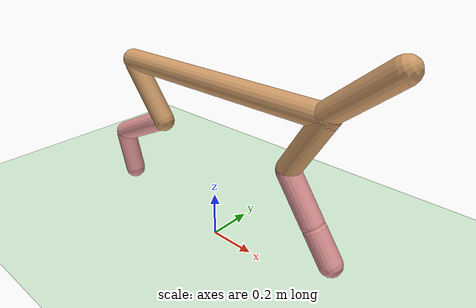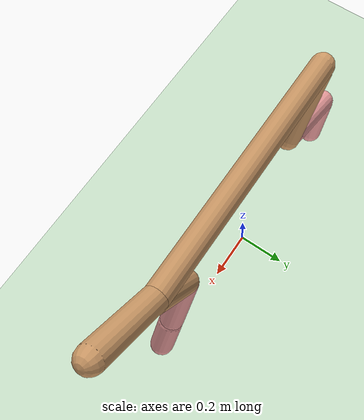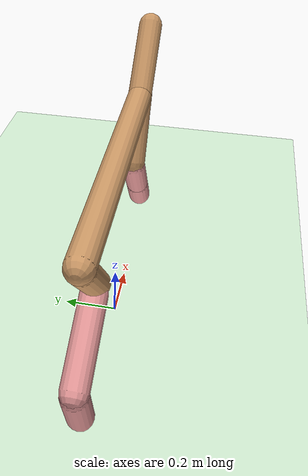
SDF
<?xml version="1.0"?>
<sdf version="1.8">
  <world name="half_cheetah">

    <physics name="fast" type="ignored">
      <!-- 10 ms step, unlimited real-time -->
      <max_step_size>0.01</max_step_size>
      <real_time_update_rate>0</real_time_update_rate>
    </physics>

    <plugin filename="gz-sim-physics-system"           name="gz::sim::systems::Physics"/>
    <plugin filename="gz-sim-contact-system"           name="gz::sim::systems::Contact"/>
    <plugin filename="gz-sim-scene-broadcaster-system" name="gz::sim::systems::SceneBroadcaster"/>
    <plugin filename="gz-sim-user-commands-system"     name="gz::sim::systems::UserCommands"/>

    <light name="sun" type="directional">
      <cast_shadows>true</cast_shadows>
      <pose>0 0 10 0 0 0</pose>
      <diffuse>0.8 0.8 0.8 1</diffuse>
      <specular>0.2 0.2 0.2 1</specular>
      <attenuation><range>1000</range><constant>0.9</constant><linear>0.01</linear><quadratic>0.001</quadratic></attenuation>
      <direction>-0.5 0.1 -0.9</direction>
    </light>

    <model name="ground_plane">
      <static>true</static>
      <link name="link">
        <collision name="collision">
          <geometry><plane><normal>0 0 1</normal><size>100 100</size></plane></geometry>
          <surface><friction><ode><mu>0.4</mu><mu2>0.1</mu2></ode></friction></surface>
        </collision>
        <visual name="visual">
          <geometry><plane><normal>0 0 1</normal><size>100 100</size></plane></geometry>
          <material><ambient>0.8 0.9 0.8 1</ambient><diffuse>0.8 0.9 0.8 1</diffuse></material>
        </visual>
      </link>
    </model>

    <model name="half_cheetah">
      <pose>0 0 0.7 0 0 0</pose>

      <link name="torso">
        <inertial>
          <pose>0.15 0 0.03 0 0 0</pose>
          <mass>6.25</mass>
          <inertia>
            <!-- Horizontal torso: Ixx(along X)=m*r²/2, Iyy=Izz=m*(3r²+L²)/12 -->
            <ixx>0.0066</ixx><ixy>0</ixy><ixz>0</ixz>
            <iyy>0.524</iyy><iyz>0</iyz>
            <izz>0.524</izz>
          </inertia>
        </inertial>
        <!-- Torso body: horizontal capsule along X -->
        <collision name="torso_collision">
          <pose>0 0 0 0 1.5708 0</pose>
          <geometry><capsule><radius>0.046</radius><length>1.0</length></capsule></geometry>
          <surface><friction><ode><mu>0.4</mu></ode></friction></surface>
        </collision>
        <visual name="torso_visual">
          <pose>0 0 0 0 1.5708 0</pose>
          <geometry><capsule><radius>0.046</radius><length>1.0</length></capsule></geometry>
          <material><diffuse>0.8 0.6 0.4 1</diffuse><ambient>0.8 0.6 0.4 1</ambient></material>
        </visual>
        <!-- Head (angled capsule at the front) -->
        <collision name="head_collision">
          <pose>0.6 0 0.1 0 0.87 0</pose>
          <geometry><capsule><radius>0.046</radius><length>0.3</length></capsule></geometry>
        </collision>
        <visual name="head_visual">
          <pose>0.6 0 0.1 0 0.87 0</pose>
          <geometry><capsule><radius>0.046</radius><length>0.3</length></capsule></geometry>
          <material><diffuse>0.8 0.6 0.4 1</diffuse><ambient>0.8 0.6 0.4 1</ambient></material>
        </visual>
      </link>

      <!-- Back leg chain: bthigh → bshin → bfoot -->

      <joint name="bthigh" type="revolute">
        <pose relative_to="torso">-0.5 0 0 0 0 0</pose>
        <parent>torso</parent>
        <child>bthigh_link</child>
        <axis>
          <xyz>0 1 0</xyz>
          <limit><lower>-0.52</lower><upper>1.05</upper><effort>120</effort><velocity>100</velocity></limit>
          <dynamics><damping>6.0</damping><stiffness>240.0</stiffness></dynamics>
        </axis>
      </joint>

      <link name="bthigh_link">
        <pose relative_to="bthigh">0 0 0 0 0 0</pose>
        <inertial>
          <pose>0.1 0 -0.13 0 0 0</pose>
          <mass>1.55</mass>
          <inertia>
            <ixx>0.01169</ixx><ixy>0</ixy><ixz>0</ixz>
            <iyy>0.01169</iyy><iyz>0</iyz>
            <izz>0.00164</izz>
          </inertia>
        </inertial>
        <collision name="bthigh_collision">
          <pose>0.1 0 -0.13 0 -3.8 0</pose>
          <geometry><capsule><radius>0.046</radius><length>0.29</length></capsule></geometry>
          <surface><friction><ode><mu>0.4</mu></ode></friction></surface>
        </collision>
        <visual name="bthigh_visual">
          <pose>0.1 0 -0.13 0 -3.8 0</pose>
          <geometry><capsule><radius>0.046</radius><length>0.29</length></capsule></geometry>
          <material><diffuse>0.8 0.6 0.4 1</diffuse><ambient>0.8 0.6 0.4 1</ambient></material>
        </visual>
      </link>

      <joint name="bshin" type="revolute">
        <pose relative_to="bthigh_link">0.16 0 -0.25 0 0 0</pose>
        <parent>bthigh_link</parent>
        <child>bshin_link</child>
        <axis>
          <xyz>0 1 0</xyz>
          <limit><lower>-0.785</lower><upper>0.785</upper><effort>90</effort><velocity>100</velocity></limit>
          <dynamics><damping>4.5</damping><stiffness>180.0</stiffness></dynamics>
        </axis>
      </joint>

      <link name="bshin_link">
        <pose relative_to="bshin">0 0 0 0 0 0</pose>
        <inertial>
          <pose>-0.14 0 -0.07 0 0 0</pose>
          <mass>1.59</mass>
          <inertia>
            <ixx>0.01276</ixx><ixy>0</ixy><ixz>0</ixz>
            <iyy>0.01276</iyy><iyz>0</iyz>
            <izz>0.00168</izz>
          </inertia>
        </inertial>
        <collision name="bshin_collision">
          <pose>-0.14 0 -0.07 0 -2.03 0</pose>
          <geometry><capsule><radius>0.046</radius><length>0.30</length></capsule></geometry>
          <surface><friction><ode><mu>0.4</mu></ode></friction></surface>
        </collision>
        <visual name="bshin_visual">
          <pose>-0.14 0 -0.07 0 -2.03 0</pose>
          <geometry><capsule><radius>0.046</radius><length>0.30</length></capsule></geometry>
          <material><diffuse>0.9 0.6 0.6 1</diffuse><ambient>0.9 0.6 0.6 1</ambient></material>
        </visual>
      </link>

      <joint name="bfoot" type="revolute">
        <pose relative_to="bshin_link">-0.28 0 -0.14 0 0 0</pose>
        <parent>bshin_link</parent>
        <child>bfoot_link</child>
        <axis>
          <xyz>0 1 0</xyz>
          <limit><lower>-0.4</lower><upper>0.785</upper><effort>60</effort><velocity>100</velocity></limit>
          <dynamics><damping>3.0</damping><stiffness>120.0</stiffness></dynamics>
        </axis>
      </joint>

      <link name="bfoot_link">
        <pose relative_to="bfoot">0 0 0 0 0 0</pose>
        <inertial>
          <pose>0.03 0 -0.097 0 0 0</pose>
          <mass>1.10</mass>
          <inertia>
            <ixx>0.00382</ixx><ixy>0</ixy><ixz>0</ixz>
            <iyy>0.00382</iyy><iyz>0</iyz>
            <izz>0.00116</izz>
          </inertia>
        </inertial>
        <collision name="bfoot_collision">
          <pose>0.03 0 -0.097 0 -0.27 0</pose>
          <geometry><capsule><radius>0.046</radius><length>0.188</length></capsule></geometry>
          <surface><friction><ode><mu>0.4</mu></ode></friction></surface>
        </collision>
        <visual name="bfoot_visual">
          <pose>0.03 0 -0.097 0 -0.27 0</pose>
          <geometry><capsule><radius>0.046</radius><length>0.188</length></capsule></geometry>
          <material><diffuse>0.9 0.6 0.6 1</diffuse><ambient>0.9 0.6 0.6 1</ambient></material>
        </visual>
      </link>

      <!-- Front leg chain: fthigh → fshin → ffoot -->

      <joint name="fthigh" type="revolute">
        <pose relative_to="torso">0.5 0 0 0 0 0</pose>
        <parent>torso</parent>
        <child>fthigh_link</child>
        <axis>
          <xyz>0 1 0</xyz>
          <limit><lower>-1.0</lower><upper>0.7</upper><effort>120</effort><velocity>100</velocity></limit>
          <dynamics><damping>4.5</damping><stiffness>180.0</stiffness></dynamics>
        </axis>
      </joint>

      <link name="fthigh_link">
        <pose relative_to="fthigh">0 0 0 0 0 0</pose>
        <inertial>
          <pose>-0.07 0 -0.12 0 0 0</pose>
          <mass>1.44</mass>
          <inertia>
            <ixx>0.00925</ixx><ixy>0</ixy><ixz>0</ixz>
            <iyy>0.00925</iyy><iyz>0</iyz>
            <izz>0.00152</izz>
          </inertia>
        </inertial>
        <collision name="fthigh_collision">
          <pose>-0.07 0 -0.12 0 0.52 0</pose>
          <geometry><capsule><radius>0.046</radius><length>0.266</length></capsule></geometry>
          <surface><friction><ode><mu>0.4</mu></ode></friction></surface>
        </collision>
        <visual name="fthigh_visual">
          <pose>-0.07 0 -0.12 0 0.52 0</pose>
          <geometry><capsule><radius>0.046</radius><length>0.266</length></capsule></geometry>
          <material><diffuse>0.8 0.6 0.4 1</diffuse><ambient>0.8 0.6 0.4 1</ambient></material>
        </visual>
      </link>

      <joint name="fshin" type="revolute">
        <pose relative_to="fthigh_link">-0.14 0 -0.24 0 0 0</pose>
        <parent>fthigh_link</parent>
        <child>fshin_link</child>
        <axis>
          <xyz>0 1 0</xyz>
          <limit><lower>-1.2</lower><upper>0.87</upper><effort>60</effort><velocity>100</velocity></limit>
          <dynamics><damping>3.0</damping><stiffness>120.0</stiffness></dynamics>
        </axis>
      </joint>

      <link name="fshin_link">
        <pose relative_to="fshin">0 0 0 0 0 0</pose>
        <inertial>
          <pose>0.065 0 -0.09 0 0 0</pose>
          <mass>1.20</mass>
          <inertia>
            <ixx>0.00513</ixx><ixy>0</ixy><ixz>0</ixz>
            <iyy>0.00513</iyy><iyz>0</iyz>
            <izz>0.00127</izz>
          </inertia>
        </inertial>
        <collision name="fshin_collision">
          <pose>0.065 0 -0.09 0 -0.6 0</pose>
          <geometry><capsule><radius>0.046</radius><length>0.212</length></capsule></geometry>
          <surface><friction><ode><mu>0.4</mu></ode></friction></surface>
        </collision>
        <visual name="fshin_visual">
          <pose>0.065 0 -0.09 0 -0.6 0</pose>
          <geometry><capsule><radius>0.046</radius><length>0.212</length></capsule></geometry>
          <material><diffuse>0.9 0.6 0.6 1</diffuse><ambient>0.9 0.6 0.6 1</ambient></material>
        </visual>
      </link>

      <joint name="ffoot" type="revolute">
        <pose relative_to="fshin_link">0.13 0 -0.18 0 0 0</pose>
        <parent>fshin_link</parent>
        <child>ffoot_link</child>
        <axis>
          <xyz>0 1 0</xyz>
          <limit><lower>-0.5</lower><upper>0.5</upper><effort>30</effort><velocity>100</velocity></limit>
          <dynamics><damping>1.5</damping><stiffness>60.0</stiffness></dynamics>
        </axis>
      </joint>

      <link name="ffoot_link">
        <pose relative_to="ffoot">0 0 0 0 0 0</pose>
        <inertial>
          <pose>0.045 0 -0.07 0 0 0</pose>
          <mass>0.88</mass>
          <inertia>
            <ixx>0.00190</ixx><ixy>0</ixy><ixz>0</ixz>
            <iyy>0.00190</iyy><iyz>0</iyz>
            <izz>0.00093</izz>
          </inertia>
        </inertial>
        <collision name="ffoot_collision">
          <pose>0.045 0 -0.07 0 -0.6 0</pose>
          <geometry><capsule><radius>0.046</radius><length>0.14</length></capsule></geometry>
          <surface><friction><ode><mu>0.4</mu></ode></friction></surface>
        </collision>
        <visual name="ffoot_visual">
          <pose>0.045 0 -0.07 0 -0.6 0</pose>
          <geometry><capsule><radius>0.046</radius><length>0.14</length></capsule></geometry>
          <material><diffuse>0.9 0.6 0.6 1</diffuse><ambient>0.9 0.6 0.6 1</ambient></material>
        </visual>
      </link>

      <!-- Force controllers (gear values from MJCF actuators) -->
      <plugin filename="gz-sim-joint-controller-system" name="gz::sim::systems::JointController">
        <joint_name>bthigh</joint_name><use_force_commands>true</use_force_commands>
        <cmd_max>120</cmd_max><cmd_min>-120</cmd_min>
      </plugin>
      <plugin filename="gz-sim-joint-controller-system" name="gz::sim::systems::JointController">
        <joint_name>bshin</joint_name><use_force_commands>true</use_force_commands>
        <cmd_max>90</cmd_max><cmd_min>-90</cmd_min>
      </plugin>
      <plugin filename="gz-sim-joint-controller-system" name="gz::sim::systems::JointController">
        <joint_name>bfoot</joint_name><use_force_commands>true</use_force_commands>
        <cmd_max>60</cmd_max><cmd_min>-60</cmd_min>
      </plugin>
      <plugin filename="gz-sim-joint-controller-system" name="gz::sim::systems::JointController">
        <joint_name>fthigh</joint_name><use_force_commands>true</use_force_commands>
        <cmd_max>120</cmd_max><cmd_min>-120</cmd_min>
      </plugin>
      <plugin filename="gz-sim-joint-controller-system" name="gz::sim::systems::JointController">
        <joint_name>fshin</joint_name><use_force_commands>true</use_force_commands>
        <cmd_max>60</cmd_max><cmd_min>-60</cmd_min>
      </plugin>
      <plugin filename="gz-sim-joint-controller-system" name="gz::sim::systems::JointController">
        <joint_name>ffoot</joint_name><use_force_commands>true</use_force_commands>
        <cmd_max>30</cmd_max><cmd_min>-30</cmd_min>
      </plugin>

      <plugin filename="gz-sim-joint-state-publisher-system" name="gz::sim::systems::JointStatePublisher">
        <joint_name>bthigh</joint_name>
        <joint_name>bshin</joint_name>
        <joint_name>bfoot</joint_name>
        <joint_name>fthigh</joint_name>
        <joint_name>fshin</joint_name>
        <joint_name>ffoot</joint_name>
      </plugin>
    </model>

  </world>
</sdf>
